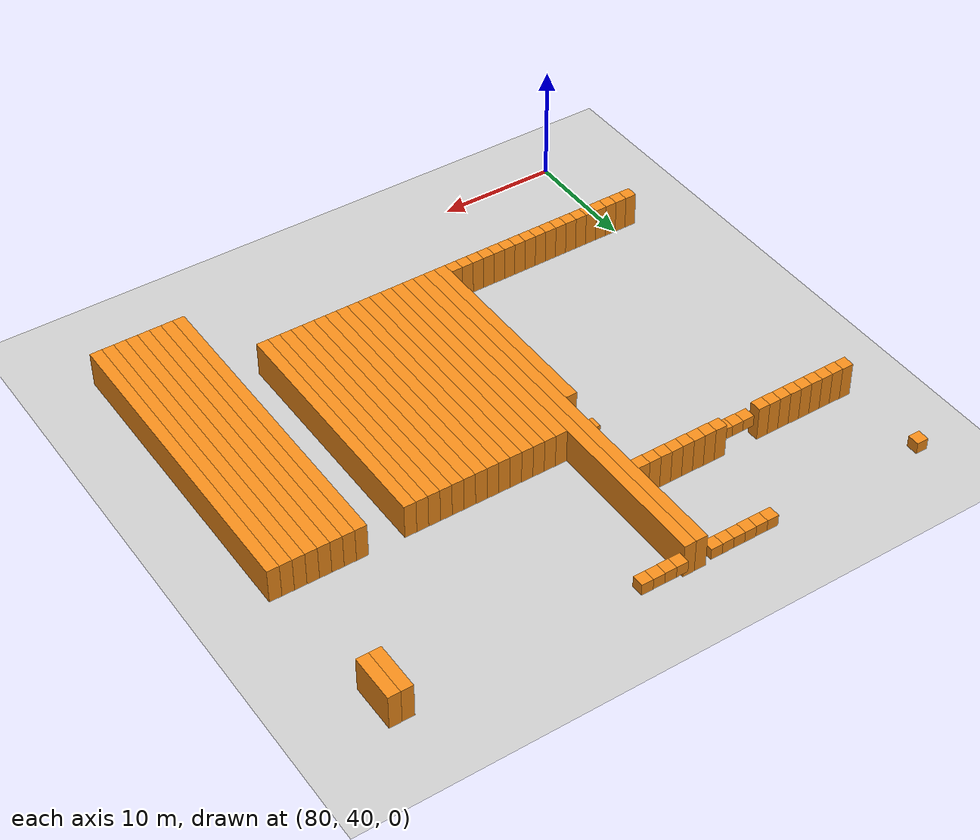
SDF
<sdf version="1.6">
 <world name="default">
  <include><uri>model://ground_plane</uri></include>
  <model name="unit_box_859">
   <pose>77.50    75.50     1.50 0 0 0</pose>
   <static>1</static>
   <link name="link">
    <inertial>
     <mass>5000</mass>
     <inertia><ixx>200</ixx><ixy>0</ixy><ixz>0</ixz><iyy>200</iyy><iyz>0</iyz><izz>200</izz></inertia>
    </inertial>
    <collision name="collision"><geometry><box><size>1 1 3</size></box></geometry></collision>
    <visual name="visual">
     <geometry><box><size>1 1 3</size></box></geometry>
     <material>
      <script><name>Gazebo/Orange</name><uri>file://media/materials/scripts/gazebo.material</uri></script>
     </material>
    </visual>
   </link>
  </model>
  <model name="unit_box_860">
   <pose>77.50    84.00     1.50 0 0 0</pose>
   <static>1</static>
   <link name="link">
    <inertial>
     <mass>5000</mass>
     <inertia><ixx>200</ixx><ixy>0</ixy><ixz>0</ixz><iyy>200</iyy><iyz>0</iyz><izz>200</izz></inertia>
    </inertial>
    <collision name="collision"><geometry><box><size>1 1 1</size></box></geometry></collision>
    <visual name="visual">
     <geometry><box><size>1 1 1</size></box></geometry>
     <material>
      <script><name>Gazebo/Orange</name><uri>file://media/materials/scripts/gazebo.material</uri></script>
     </material>
    </visual>
   </link>
  </model>
  <model name="unit_box_872">
   <pose>78.50    49.50     1.50 0 0 0</pose>
   <static>1</static>
   <link name="link">
    <inertial>
     <mass>5000</mass>
     <inertia><ixx>200</ixx><ixy>0</ixy><ixz>0</ixz><iyy>200</iyy><iyz>0</iyz><izz>200</izz></inertia>
    </inertial>
    <collision name="collision"><geometry><box><size>1 1 3</size></box></geometry></collision>
    <visual name="visual">
     <geometry><box><size>1 1 3</size></box></geometry>
     <material>
      <script><name>Gazebo/Orange</name><uri>file://media/materials/scripts/gazebo.material</uri></script>
     </material>
    </visual>
   </link>
  </model>
  <model name="unit_box_873">
   <pose>78.50    75.50     1.50 0 0 0</pose>
   <static>1</static>
   <link name="link">
    <inertial>
     <mass>5000</mass>
     <inertia><ixx>200</ixx><ixy>0</ixy><ixz>0</ixz><iyy>200</iyy><iyz>0</iyz><izz>200</izz></inertia>
    </inertial>
    <collision name="collision"><geometry><box><size>1 1 3</size></box></geometry></collision>
    <visual name="visual">
     <geometry><box><size>1 1 3</size></box></geometry>
     <material>
      <script><name>Gazebo/Orange</name><uri>file://media/materials/scripts/gazebo.material</uri></script>
     </material>
    </visual>
   </link>
  </model>
  <model name="unit_box_885">
   <pose>79.50    49.50     1.50 0 0 0</pose>
   <static>1</static>
   <link name="link">
    <inertial>
     <mass>5000</mass>
     <inertia><ixx>200</ixx><ixy>0</ixy><ixz>0</ixz><iyy>200</iyy><iyz>0</iyz><izz>200</izz></inertia>
    </inertial>
    <collision name="collision"><geometry><box><size>1 1 3</size></box></geometry></collision>
    <visual name="visual">
     <geometry><box><size>1 1 3</size></box></geometry>
     <material>
      <script><name>Gazebo/Orange</name><uri>file://media/materials/scripts/gazebo.material</uri></script>
     </material>
    </visual>
   </link>
  </model>
  <model name="unit_box_886">
   <pose>79.50    75.50     1.50 0 0 0</pose>
   <static>1</static>
   <link name="link">
    <inertial>
     <mass>5000</mass>
     <inertia><ixx>200</ixx><ixy>0</ixy><ixz>0</ixz><iyy>200</iyy><iyz>0</iyz><izz>200</izz></inertia>
    </inertial>
    <collision name="collision"><geometry><box><size>1 1 3</size></box></geometry></collision>
    <visual name="visual">
     <geometry><box><size>1 1 3</size></box></geometry>
     <material>
      <script><name>Gazebo/Orange</name><uri>file://media/materials/scripts/gazebo.material</uri></script>
     </material>
    </visual>
   </link>
  </model>
  <model name="unit_box_898">
   <pose>80.50    49.50     1.50 0 0 0</pose>
   <static>1</static>
   <link name="link">
    <inertial>
     <mass>5000</mass>
     <inertia><ixx>200</ixx><ixy>0</ixy><ixz>0</ixz><iyy>200</iyy><iyz>0</iyz><izz>200</izz></inertia>
    </inertial>
    <collision name="collision"><geometry><box><size>1 1 3</size></box></geometry></collision>
    <visual name="visual">
     <geometry><box><size>1 1 3</size></box></geometry>
     <material>
      <script><name>Gazebo/Orange</name><uri>file://media/materials/scripts/gazebo.material</uri></script>
     </material>
    </visual>
   </link>
  </model>
  <model name="unit_box_899">
   <pose>80.50    75.50     1.50 0 0 0</pose>
   <static>1</static>
   <link name="link">
    <inertial>
     <mass>5000</mass>
     <inertia><ixx>200</ixx><ixy>0</ixy><ixz>0</ixz><iyy>200</iyy><iyz>0</iyz><izz>200</izz></inertia>
    </inertial>
    <collision name="collision"><geometry><box><size>1 1 3</size></box></geometry></collision>
    <visual name="visual">
     <geometry><box><size>1 1 3</size></box></geometry>
     <material>
      <script><name>Gazebo/Orange</name><uri>file://media/materials/scripts/gazebo.material</uri></script>
     </material>
    </visual>
   </link>
  </model>
  <model name="unit_box_911">
   <pose>81.50    49.50     1.50 0 0 0</pose>
   <static>1</static>
   <link name="link">
    <inertial>
     <mass>5000</mass>
     <inertia><ixx>200</ixx><ixy>0</ixy><ixz>0</ixz><iyy>200</iyy><iyz>0</iyz><izz>200</izz></inertia>
    </inertial>
    <collision name="collision"><geometry><box><size>1 1 3</size></box></geometry></collision>
    <visual name="visual">
     <geometry><box><size>1 1 3</size></box></geometry>
     <material>
      <script><name>Gazebo/Orange</name><uri>file://media/materials/scripts/gazebo.material</uri></script>
     </material>
    </visual>
   </link>
  </model>
  <model name="unit_box_912">
   <pose>81.50    75.50     1.50 0 0 0</pose>
   <static>1</static>
   <link name="link">
    <inertial>
     <mass>5000</mass>
     <inertia><ixx>200</ixx><ixy>0</ixy><ixz>0</ixz><iyy>200</iyy><iyz>0</iyz><izz>200</izz></inertia>
    </inertial>
    <collision name="collision"><geometry><box><size>1 1 3</size></box></geometry></collision>
    <visual name="visual">
     <geometry><box><size>1 1 3</size></box></geometry>
     <material>
      <script><name>Gazebo/Orange</name><uri>file://media/materials/scripts/gazebo.material</uri></script>
     </material>
    </visual>
   </link>
  </model>
  <model name="unit_box_925">
   <pose>82.50    49.50     1.50 0 0 0</pose>
   <static>1</static>
   <link name="link">
    <inertial>
     <mass>5000</mass>
     <inertia><ixx>200</ixx><ixy>0</ixy><ixz>0</ixz><iyy>200</iyy><iyz>0</iyz><izz>200</izz></inertia>
    </inertial>
    <collision name="collision"><geometry><box><size>1 1 3</size></box></geometry></collision>
    <visual name="visual">
     <geometry><box><size>1 1 3</size></box></geometry>
     <material>
      <script><name>Gazebo/Orange</name><uri>file://media/materials/scripts/gazebo.material</uri></script>
     </material>
    </visual>
   </link>
  </model>
  <model name="unit_box_926">
   <pose>82.50    75.50     1.50 0 0 0</pose>
   <static>1</static>
   <link name="link">
    <inertial>
     <mass>5000</mass>
     <inertia><ixx>200</ixx><ixy>0</ixy><ixz>0</ixz><iyy>200</iyy><iyz>0</iyz><izz>200</izz></inertia>
    </inertial>
    <collision name="collision"><geometry><box><size>1 1 3</size></box></geometry></collision>
    <visual name="visual">
     <geometry><box><size>1 1 3</size></box></geometry>
     <material>
      <script><name>Gazebo/Orange</name><uri>file://media/materials/scripts/gazebo.material</uri></script>
     </material>
    </visual>
   </link>
  </model>
  <model name="unit_box_939">
   <pose>83.50    49.50     1.50 0 0 0</pose>
   <static>1</static>
   <link name="link">
    <inertial>
     <mass>5000</mass>
     <inertia><ixx>200</ixx><ixy>0</ixy><ixz>0</ixz><iyy>200</iyy><iyz>0</iyz><izz>200</izz></inertia>
    </inertial>
    <collision name="collision"><geometry><box><size>1 1 3</size></box></geometry></collision>
    <visual name="visual">
     <geometry><box><size>1 1 3</size></box></geometry>
     <material>
      <script><name>Gazebo/Orange</name><uri>file://media/materials/scripts/gazebo.material</uri></script>
     </material>
    </visual>
   </link>
  </model>
  <model name="unit_box_940">
   <pose>83.50    75.50     1.50 0 0 0</pose>
   <static>1</static>
   <link name="link">
    <inertial>
     <mass>5000</mass>
     <inertia><ixx>200</ixx><ixy>0</ixy><ixz>0</ixz><iyy>200</iyy><iyz>0</iyz><izz>200</izz></inertia>
    </inertial>
    <collision name="collision"><geometry><box><size>1 1 3</size></box></geometry></collision>
    <visual name="visual">
     <geometry><box><size>1 1 3</size></box></geometry>
     <material>
      <script><name>Gazebo/Orange</name><uri>file://media/materials/scripts/gazebo.material</uri></script>
     </material>
    </visual>
   </link>
  </model>
  <model name="unit_box_951">
   <pose>84.50    49.50     1.50 0 0 0</pose>
   <static>1</static>
   <link name="link">
    <inertial>
     <mass>5000</mass>
     <inertia><ixx>200</ixx><ixy>0</ixy><ixz>0</ixz><iyy>200</iyy><iyz>0</iyz><izz>200</izz></inertia>
    </inertial>
    <collision name="collision"><geometry><box><size>1 1 3</size></box></geometry></collision>
    <visual name="visual">
     <geometry><box><size>1 1 3</size></box></geometry>
     <material>
      <script><name>Gazebo/Orange</name><uri>file://media/materials/scripts/gazebo.material</uri></script>
     </material>
    </visual>
   </link>
  </model>
  <model name="unit_box_952">
   <pose>84.50    75.50     1.50 0 0 0</pose>
   <static>1</static>
   <link name="link">
    <inertial>
     <mass>5000</mass>
     <inertia><ixx>200</ixx><ixy>0</ixy><ixz>0</ixz><iyy>200</iyy><iyz>0</iyz><izz>200</izz></inertia>
    </inertial>
    <collision name="collision"><geometry><box><size>1 1 3</size></box></geometry></collision>
    <visual name="visual">
     <geometry><box><size>1 1 3</size></box></geometry>
     <material>
      <script><name>Gazebo/Orange</name><uri>file://media/materials/scripts/gazebo.material</uri></script>
     </material>
    </visual>
   </link>
  </model>
  <model name="unit_box_965">
   <pose>85.50    49.50     1.50 0 0 0</pose>
   <static>1</static>
   <link name="link">
    <inertial>
     <mass>5000</mass>
     <inertia><ixx>200</ixx><ixy>0</ixy><ixz>0</ixz><iyy>200</iyy><iyz>0</iyz><izz>200</izz></inertia>
    </inertial>
    <collision name="collision"><geometry><box><size>1 1 3</size></box></geometry></collision>
    <visual name="visual">
     <geometry><box><size>1 1 3</size></box></geometry>
     <material>
      <script><name>Gazebo/Orange</name><uri>file://media/materials/scripts/gazebo.material</uri></script>
     </material>
    </visual>
   </link>
  </model>
  <model name="unit_box_966">
   <pose>85.50    75.50     1.50 0 0 0</pose>
   <static>1</static>
   <link name="link">
    <inertial>
     <mass>5000</mass>
     <inertia><ixx>200</ixx><ixy>0</ixy><ixz>0</ixz><iyy>200</iyy><iyz>0</iyz><izz>200</izz></inertia>
    </inertial>
    <collision name="collision"><geometry><box><size>1 1 3</size></box></geometry></collision>
    <visual name="visual">
     <geometry><box><size>1 1 3</size></box></geometry>
     <material>
      <script><name>Gazebo/Orange</name><uri>file://media/materials/scripts/gazebo.material</uri></script>
     </material>
    </visual>
   </link>
  </model>
  <model name="unit_box_976">
   <pose>86.50    49.50     1.50 0 0 0</pose>
   <static>1</static>
   <link name="link">
    <inertial>
     <mass>5000</mass>
     <inertia><ixx>200</ixx><ixy>0</ixy><ixz>0</ixz><iyy>200</iyy><iyz>0</iyz><izz>200</izz></inertia>
    </inertial>
    <collision name="collision"><geometry><box><size>1 1 3</size></box></geometry></collision>
    <visual name="visual">
     <geometry><box><size>1 1 3</size></box></geometry>
     <material>
      <script><name>Gazebo/Orange</name><uri>file://media/materials/scripts/gazebo.material</uri></script>
     </material>
    </visual>
   </link>
  </model>
  <model name="unit_box_977">
   <pose>86.50    75.00     1.50 0 0 0</pose>
   <static>1</static>
   <link name="link">
    <inertial>
     <mass>5000</mass>
     <inertia><ixx>200</ixx><ixy>0</ixy><ixz>0</ixz><iyy>200</iyy><iyz>0</iyz><izz>200</izz></inertia>
    </inertial>
    <collision name="collision"><geometry><box><size>1 1 1</size></box></geometry></collision>
    <visual name="visual">
     <geometry><box><size>1 1 1</size></box></geometry>
     <material>
      <script><name>Gazebo/Orange</name><uri>file://media/materials/scripts/gazebo.material</uri></script>
     </material>
    </visual>
   </link>
  </model>
  <model name="unit_box_991">
   <pose>87.50    49.50     1.50 0 0 0</pose>
   <static>1</static>
   <link name="link">
    <inertial>
     <mass>5000</mass>
     <inertia><ixx>200</ixx><ixy>0</ixy><ixz>0</ixz><iyy>200</iyy><iyz>0</iyz><izz>200</izz></inertia>
    </inertial>
    <collision name="collision"><geometry><box><size>1 1 3</size></box></geometry></collision>
    <visual name="visual">
     <geometry><box><size>1 1 3</size></box></geometry>
     <material>
      <script><name>Gazebo/Orange</name><uri>file://media/materials/scripts/gazebo.material</uri></script>
     </material>
    </visual>
   </link>
  </model>
  <model name="unit_box_992">
   <pose>87.50    75.00     1.50 0 0 0</pose>
   <static>1</static>
   <link name="link">
    <inertial>
     <mass>5000</mass>
     <inertia><ixx>200</ixx><ixy>0</ixy><ixz>0</ixz><iyy>200</iyy><iyz>0</iyz><izz>200</izz></inertia>
    </inertial>
    <collision name="collision"><geometry><box><size>1 1 1</size></box></geometry></collision>
    <visual name="visual">
     <geometry><box><size>1 1 1</size></box></geometry>
     <material>
      <script><name>Gazebo/Orange</name><uri>file://media/materials/scripts/gazebo.material</uri></script>
     </material>
    </visual>
   </link>
  </model>
  <model name="unit_box_1001">
   <pose>88.50    49.50     1.50 0 0 0</pose>
   <static>1</static>
   <link name="link">
    <inertial>
     <mass>5000</mass>
     <inertia><ixx>200</ixx><ixy>0</ixy><ixz>0</ixz><iyy>200</iyy><iyz>0</iyz><izz>200</izz></inertia>
    </inertial>
    <collision name="collision"><geometry><box><size>1 1 3</size></box></geometry></collision>
    <visual name="visual">
     <geometry><box><size>1 1 3</size></box></geometry>
     <material>
      <script><name>Gazebo/Orange</name><uri>file://media/materials/scripts/gazebo.material</uri></script>
     </material>
    </visual>
   </link>
  </model>
  <model name="unit_box_1002">
   <pose>88.50    75.00     1.50 0 0 0</pose>
   <static>1</static>
   <link name="link">
    <inertial>
     <mass>5000</mass>
     <inertia><ixx>200</ixx><ixy>0</ixy><ixz>0</ixz><iyy>200</iyy><iyz>0</iyz><izz>200</izz></inertia>
    </inertial>
    <collision name="collision"><geometry><box><size>1 1 1</size></box></geometry></collision>
    <visual name="visual">
     <geometry><box><size>1 1 1</size></box></geometry>
     <material>
      <script><name>Gazebo/Orange</name><uri>file://media/materials/scripts/gazebo.material</uri></script>
     </material>
    </visual>
   </link>
  </model>
  <model name="unit_box_1012">
   <pose>89.50    49.50     1.50 0 0 0</pose>
   <static>1</static>
   <link name="link">
    <inertial>
     <mass>5000</mass>
     <inertia><ixx>200</ixx><ixy>0</ixy><ixz>0</ixz><iyy>200</iyy><iyz>0</iyz><izz>200</izz></inertia>
    </inertial>
    <collision name="collision"><geometry><box><size>1 1 3</size></box></geometry></collision>
    <visual name="visual">
     <geometry><box><size>1 1 3</size></box></geometry>
     <material>
      <script><name>Gazebo/Orange</name><uri>file://media/materials/scripts/gazebo.material</uri></script>
     </material>
    </visual>
   </link>
  </model>
  <model name="unit_box_1013">
   <pose>89.50    75.50     1.50 0 0 0</pose>
   <static>1</static>
   <link name="link">
    <inertial>
     <mass>5000</mass>
     <inertia><ixx>200</ixx><ixy>0</ixy><ixz>0</ixz><iyy>200</iyy><iyz>0</iyz><izz>200</izz></inertia>
    </inertial>
    <collision name="collision"><geometry><box><size>1 1 3</size></box></geometry></collision>
    <visual name="visual">
     <geometry><box><size>1 1 3</size></box></geometry>
     <material>
      <script><name>Gazebo/Orange</name><uri>file://media/materials/scripts/gazebo.material</uri></script>
     </material>
    </visual>
   </link>
  </model>
  <model name="unit_box_1021">
   <pose>90.50    49.50     1.50 0 0 0</pose>
   <static>1</static>
   <link name="link">
    <inertial>
     <mass>5000</mass>
     <inertia><ixx>200</ixx><ixy>0</ixy><ixz>0</ixz><iyy>200</iyy><iyz>0</iyz><izz>200</izz></inertia>
    </inertial>
    <collision name="collision"><geometry><box><size>1 1 3</size></box></geometry></collision>
    <visual name="visual">
     <geometry><box><size>1 1 3</size></box></geometry>
     <material>
      <script><name>Gazebo/Orange</name><uri>file://media/materials/scripts/gazebo.material</uri></script>
     </material>
    </visual>
   </link>
  </model>
  <model name="unit_box_1022">
   <pose>90.50    75.50     1.50 0 0 0</pose>
   <static>1</static>
   <link name="link">
    <inertial>
     <mass>5000</mass>
     <inertia><ixx>200</ixx><ixy>0</ixy><ixz>0</ixz><iyy>200</iyy><iyz>0</iyz><izz>200</izz></inertia>
    </inertial>
    <collision name="collision"><geometry><box><size>1 1 3</size></box></geometry></collision>
    <visual name="visual">
     <geometry><box><size>1 1 3</size></box></geometry>
     <material>
      <script><name>Gazebo/Orange</name><uri>file://media/materials/scripts/gazebo.material</uri></script>
     </material>
    </visual>
   </link>
  </model>
  <model name="unit_box_1029">
   <pose>91.50    49.50     1.50 0 0 0</pose>
   <static>1</static>
   <link name="link">
    <inertial>
     <mass>5000</mass>
     <inertia><ixx>200</ixx><ixy>0</ixy><ixz>0</ixz><iyy>200</iyy><iyz>0</iyz><izz>200</izz></inertia>
    </inertial>
    <collision name="collision"><geometry><box><size>1 1 3</size></box></geometry></collision>
    <visual name="visual">
     <geometry><box><size>1 1 3</size></box></geometry>
     <material>
      <script><name>Gazebo/Orange</name><uri>file://media/materials/scripts/gazebo.material</uri></script>
     </material>
    </visual>
   </link>
  </model>
  <model name="unit_box_1030">
   <pose>91.50    75.50     1.50 0 0 0</pose>
   <static>1</static>
   <link name="link">
    <inertial>
     <mass>5000</mass>
     <inertia><ixx>200</ixx><ixy>0</ixy><ixz>0</ixz><iyy>200</iyy><iyz>0</iyz><izz>200</izz></inertia>
    </inertial>
    <collision name="collision"><geometry><box><size>1 1 3</size></box></geometry></collision>
    <visual name="visual">
     <geometry><box><size>1 1 3</size></box></geometry>
     <material>
      <script><name>Gazebo/Orange</name><uri>file://media/materials/scripts/gazebo.material</uri></script>
     </material>
    </visual>
   </link>
  </model>
  <model name="unit_box_1031">
   <pose>91.50    84.00     1.50 0 0 0</pose>
   <static>1</static>
   <link name="link">
    <inertial>
     <mass>5000</mass>
     <inertia><ixx>200</ixx><ixy>0</ixy><ixz>0</ixz><iyy>200</iyy><iyz>0</iyz><izz>200</izz></inertia>
    </inertial>
    <collision name="collision"><geometry><box><size>1 1 1</size></box></geometry></collision>
    <visual name="visual">
     <geometry><box><size>1 1 1</size></box></geometry>
     <material>
      <script><name>Gazebo/Orange</name><uri>file://media/materials/scripts/gazebo.material</uri></script>
     </material>
    </visual>
   </link>
  </model>
  <model name="unit_box_1038">
   <pose>92.50    49.50     1.50 0 0 0</pose>
   <static>1</static>
   <link name="link">
    <inertial>
     <mass>5000</mass>
     <inertia><ixx>200</ixx><ixy>0</ixy><ixz>0</ixz><iyy>200</iyy><iyz>0</iyz><izz>200</izz></inertia>
    </inertial>
    <collision name="collision"><geometry><box><size>1 1 3</size></box></geometry></collision>
    <visual name="visual">
     <geometry><box><size>1 1 3</size></box></geometry>
     <material>
      <script><name>Gazebo/Orange</name><uri>file://media/materials/scripts/gazebo.material</uri></script>
     </material>
    </visual>
   </link>
  </model>
  <model name="unit_box_1039">
   <pose>92.50    75.50     1.50 0 0 0</pose>
   <static>1</static>
   <link name="link">
    <inertial>
     <mass>5000</mass>
     <inertia><ixx>200</ixx><ixy>0</ixy><ixz>0</ixz><iyy>200</iyy><iyz>0</iyz><izz>200</izz></inertia>
    </inertial>
    <collision name="collision"><geometry><box><size>1 1 3</size></box></geometry></collision>
    <visual name="visual">
     <geometry><box><size>1 1 3</size></box></geometry>
     <material>
      <script><name>Gazebo/Orange</name><uri>file://media/materials/scripts/gazebo.material</uri></script>
     </material>
    </visual>
   </link>
  </model>
  <model name="unit_box_1040">
   <pose>92.50    84.00     1.50 0 0 0</pose>
   <static>1</static>
   <link name="link">
    <inertial>
     <mass>5000</mass>
     <inertia><ixx>200</ixx><ixy>0</ixy><ixz>0</ixz><iyy>200</iyy><iyz>0</iyz><izz>200</izz></inertia>
    </inertial>
    <collision name="collision"><geometry><box><size>1 1 1</size></box></geometry></collision>
    <visual name="visual">
     <geometry><box><size>1 1 1</size></box></geometry>
     <material>
      <script><name>Gazebo/Orange</name><uri>file://media/materials/scripts/gazebo.material</uri></script>
     </material>
    </visual>
   </link>
  </model>
  <model name="unit_box_1047">
   <pose>93.50    49.50     1.50 0 0 0</pose>
   <static>1</static>
   <link name="link">
    <inertial>
     <mass>5000</mass>
     <inertia><ixx>200</ixx><ixy>0</ixy><ixz>0</ixz><iyy>200</iyy><iyz>0</iyz><izz>200</izz></inertia>
    </inertial>
    <collision name="collision"><geometry><box><size>1 1 3</size></box></geometry></collision>
    <visual name="visual">
     <geometry><box><size>1 1 3</size></box></geometry>
     <material>
      <script><name>Gazebo/Orange</name><uri>file://media/materials/scripts/gazebo.material</uri></script>
     </material>
    </visual>
   </link>
  </model>
  <model name="unit_box_1048">
   <pose>93.50    75.50     1.50 0 0 0</pose>
   <static>1</static>
   <link name="link">
    <inertial>
     <mass>5000</mass>
     <inertia><ixx>200</ixx><ixy>0</ixy><ixz>0</ixz><iyy>200</iyy><iyz>0</iyz><izz>200</izz></inertia>
    </inertial>
    <collision name="collision"><geometry><box><size>1 1 3</size></box></geometry></collision>
    <visual name="visual">
     <geometry><box><size>1 1 3</size></box></geometry>
     <material>
      <script><name>Gazebo/Orange</name><uri>file://media/materials/scripts/gazebo.material</uri></script>
     </material>
    </visual>
   </link>
  </model>
  <model name="unit_box_1049">
   <pose>93.50    84.00     1.50 0 0 0</pose>
   <static>1</static>
   <link name="link">
    <inertial>
     <mass>5000</mass>
     <inertia><ixx>200</ixx><ixy>0</ixy><ixz>0</ixz><iyy>200</iyy><iyz>0</iyz><izz>200</izz></inertia>
    </inertial>
    <collision name="collision"><geometry><box><size>1 1 1</size></box></geometry></collision>
    <visual name="visual">
     <geometry><box><size>1 1 1</size></box></geometry>
     <material>
      <script><name>Gazebo/Orange</name><uri>file://media/materials/scripts/gazebo.material</uri></script>
     </material>
    </visual>
   </link>
  </model>
  <model name="unit_box_1055">
   <pose>94.50    49.50     1.50 0 0 0</pose>
   <static>1</static>
   <link name="link">
    <inertial>
     <mass>5000</mass>
     <inertia><ixx>200</ixx><ixy>0</ixy><ixz>0</ixz><iyy>200</iyy><iyz>0</iyz><izz>200</izz></inertia>
    </inertial>
    <collision name="collision"><geometry><box><size>1 1 3</size></box></geometry></collision>
    <visual name="visual">
     <geometry><box><size>1 1 3</size></box></geometry>
     <material>
      <script><name>Gazebo/Orange</name><uri>file://media/materials/scripts/gazebo.material</uri></script>
     </material>
    </visual>
   </link>
  </model>
  <model name="unit_box_1056">
   <pose>94.50    75.50     1.50 0 0 0</pose>
   <static>1</static>
   <link name="link">
    <inertial>
     <mass>5000</mass>
     <inertia><ixx>200</ixx><ixy>0</ixy><ixz>0</ixz><iyy>200</iyy><iyz>0</iyz><izz>200</izz></inertia>
    </inertial>
    <collision name="collision"><geometry><box><size>1 1 3</size></box></geometry></collision>
    <visual name="visual">
     <geometry><box><size>1 1 3</size></box></geometry>
     <material>
      <script><name>Gazebo/Orange</name><uri>file://media/materials/scripts/gazebo.material</uri></script>
     </material>
    </visual>
   </link>
  </model>
  <model name="unit_box_1057">
   <pose>94.50    84.00     1.50 0 0 0</pose>
   <static>1</static>
   <link name="link">
    <inertial>
     <mass>5000</mass>
     <inertia><ixx>200</ixx><ixy>0</ixy><ixz>0</ixz><iyy>200</iyy><iyz>0</iyz><izz>200</izz></inertia>
    </inertial>
    <collision name="collision"><geometry><box><size>1 1 1</size></box></geometry></collision>
    <visual name="visual">
     <geometry><box><size>1 1 1</size></box></geometry>
     <material>
      <script><name>Gazebo/Orange</name><uri>file://media/materials/scripts/gazebo.material</uri></script>
     </material>
    </visual>
   </link>
  </model>
  <model name="unit_box_1066">
   <pose>95.50    49.50     1.50 0 0 0</pose>
   <static>1</static>
   <link name="link">
    <inertial>
     <mass>5000</mass>
     <inertia><ixx>200</ixx><ixy>0</ixy><ixz>0</ixz><iyy>200</iyy><iyz>0</iyz><izz>200</izz></inertia>
    </inertial>
    <collision name="collision"><geometry><box><size>1 1 3</size></box></geometry></collision>
    <visual name="visual">
     <geometry><box><size>1 1 3</size></box></geometry>
     <material>
      <script><name>Gazebo/Orange</name><uri>file://media/materials/scripts/gazebo.material</uri></script>
     </material>
    </visual>
   </link>
  </model>
  <model name="unit_box_1067">
   <pose>95.50    75.50     1.50 0 0 0</pose>
   <static>1</static>
   <link name="link">
    <inertial>
     <mass>5000</mass>
     <inertia><ixx>200</ixx><ixy>0</ixy><ixz>0</ixz><iyy>200</iyy><iyz>0</iyz><izz>200</izz></inertia>
    </inertial>
    <collision name="collision"><geometry><box><size>1 1 3</size></box></geometry></collision>
    <visual name="visual">
     <geometry><box><size>1 1 3</size></box></geometry>
     <material>
      <script><name>Gazebo/Orange</name><uri>file://media/materials/scripts/gazebo.material</uri></script>
     </material>
    </visual>
   </link>
  </model>
  <model name="unit_box_1068">
   <pose>95.50    84.00     1.50 0 0 0</pose>
   <static>1</static>
   <link name="link">
    <inertial>
     <mass>5000</mass>
     <inertia><ixx>200</ixx><ixy>0</ixy><ixz>0</ixz><iyy>200</iyy><iyz>0</iyz><izz>200</izz></inertia>
    </inertial>
    <collision name="collision"><geometry><box><size>1 1 1</size></box></geometry></collision>
    <visual name="visual">
     <geometry><box><size>1 1 1</size></box></geometry>
     <material>
      <script><name>Gazebo/Orange</name><uri>file://media/materials/scripts/gazebo.material</uri></script>
     </material>
    </visual>
   </link>
  </model>
  <model name="unit_box_1077">
   <pose>96.50    58.00     1.50 0 0 0</pose>
   <static>1</static>
   <link name="link">
    <inertial>
     <mass>5000</mass>
     <inertia><ixx>200</ixx><ixy>0</ixy><ixz>0</ixz><iyy>200</iyy><iyz>0</iyz><izz>200</izz></inertia>
    </inertial>
    <collision name="collision"><geometry><box><size>1 18 3</size></box></geometry></collision>
    <visual name="visual">
     <geometry><box><size>1 18 3</size></box></geometry>
     <material>
      <script><name>Gazebo/Orange</name><uri>file://media/materials/scripts/gazebo.material</uri></script>
     </material>
    </visual>
   </link>
  </model>
  <model name="unit_box_1078">
   <pose>96.50    69.50     1.50 0 0 0</pose>
   <static>1</static>
   <link name="link">
    <inertial>
     <mass>5000</mass>
     <inertia><ixx>200</ixx><ixy>0</ixy><ixz>0</ixz><iyy>200</iyy><iyz>0</iyz><izz>200</izz></inertia>
    </inertial>
    <collision name="collision"><geometry><box><size>1 1 1</size></box></geometry></collision>
    <visual name="visual">
     <geometry><box><size>1 1 1</size></box></geometry>
     <material>
      <script><name>Gazebo/Orange</name><uri>file://media/materials/scripts/gazebo.material</uri></script>
     </material>
    </visual>
   </link>
  </model>
  <model name="unit_box_1079">
   <pose>96.50    75.50     1.50 0 0 0</pose>
   <static>1</static>
   <link name="link">
    <inertial>
     <mass>5000</mass>
     <inertia><ixx>200</ixx><ixy>0</ixy><ixz>0</ixz><iyy>200</iyy><iyz>0</iyz><izz>200</izz></inertia>
    </inertial>
    <collision name="collision"><geometry><box><size>1 1 3</size></box></geometry></collision>
    <visual name="visual">
     <geometry><box><size>1 1 3</size></box></geometry>
     <material>
      <script><name>Gazebo/Orange</name><uri>file://media/materials/scripts/gazebo.material</uri></script>
     </material>
    </visual>
   </link>
  </model>
  <model name="unit_box_1080">
   <pose>96.50    84.00     1.50 0 0 0</pose>
   <static>1</static>
   <link name="link">
    <inertial>
     <mass>5000</mass>
     <inertia><ixx>200</ixx><ixy>0</ixy><ixz>0</ixz><iyy>200</iyy><iyz>0</iyz><izz>200</izz></inertia>
    </inertial>
    <collision name="collision"><geometry><box><size>1 1 1</size></box></geometry></collision>
    <visual name="visual">
     <geometry><box><size>1 1 1</size></box></geometry>
     <material>
      <script><name>Gazebo/Orange</name><uri>file://media/materials/scripts/gazebo.material</uri></script>
     </material>
    </visual>
   </link>
  </model>
  <model name="unit_box_1089">
   <pose>97.50    66.50     1.50 0 0 0</pose>
   <static>1</static>
   <link name="link">
    <inertial>
     <mass>5000</mass>
     <inertia><ixx>200</ixx><ixy>0</ixy><ixz>0</ixz><iyy>200</iyy><iyz>0</iyz><izz>200</izz></inertia>
    </inertial>
    <collision name="collision"><geometry><box><size>1 35 3</size></box></geometry></collision>
    <visual name="visual">
     <geometry><box><size>1 35 3</size></box></geometry>
     <material>
      <script><name>Gazebo/Orange</name><uri>file://media/materials/scripts/gazebo.material</uri></script>
     </material>
    </visual>
   </link>
  </model>
  <model name="unit_box_1099">
   <pose>98.50    66.50     1.50 0 0 0</pose>
   <static>1</static>
   <link name="link">
    <inertial>
     <mass>5000</mass>
     <inertia><ixx>200</ixx><ixy>0</ixy><ixz>0</ixz><iyy>200</iyy><iyz>0</iyz><izz>200</izz></inertia>
    </inertial>
    <collision name="collision"><geometry><box><size>1 35 3</size></box></geometry></collision>
    <visual name="visual">
     <geometry><box><size>1 35 3</size></box></geometry>
     <material>
      <script><name>Gazebo/Orange</name><uri>file://media/materials/scripts/gazebo.material</uri></script>
     </material>
    </visual>
   </link>
  </model>
  <model name="unit_box_1110">
   <pose>99.50    59.50     1.50 0 0 0</pose>
   <static>1</static>
   <link name="link">
    <inertial>
     <mass>5000</mass>
     <inertia><ixx>200</ixx><ixy>0</ixy><ixz>0</ixz><iyy>200</iyy><iyz>0</iyz><izz>200</izz></inertia>
    </inertial>
    <collision name="collision"><geometry><box><size>1 21 3</size></box></geometry></collision>
    <visual name="visual">
     <geometry><box><size>1 21 3</size></box></geometry>
     <material>
      <script><name>Gazebo/Orange</name><uri>file://media/materials/scripts/gazebo.material</uri></script>
     </material>
    </visual>
   </link>
  </model>
  <model name="unit_box_1111">
   <pose>99.50    84.00     1.50 0 0 0</pose>
   <static>1</static>
   <link name="link">
    <inertial>
     <mass>5000</mass>
     <inertia><ixx>200</ixx><ixy>0</ixy><ixz>0</ixz><iyy>200</iyy><iyz>0</iyz><izz>200</izz></inertia>
    </inertial>
    <collision name="collision"><geometry><box><size>1 1 1</size></box></geometry></collision>
    <visual name="visual">
     <geometry><box><size>1 1 1</size></box></geometry>
     <material>
      <script><name>Gazebo/Orange</name><uri>file://media/materials/scripts/gazebo.material</uri></script>
     </material>
    </visual>
   </link>
  </model>
  <model name="unit_box_1122">
   <pose>100.50    59.50     1.50 0 0 0</pose>
   <static>1</static>
   <link name="link">
    <inertial>
     <mass>5000</mass>
     <inertia><ixx>200</ixx><ixy>0</ixy><ixz>0</ixz><iyy>200</iyy><iyz>0</iyz><izz>200</izz></inertia>
    </inertial>
    <collision name="collision"><geometry><box><size>1 21 3</size></box></geometry></collision>
    <visual name="visual">
     <geometry><box><size>1 21 3</size></box></geometry>
     <material>
      <script><name>Gazebo/Orange</name><uri>file://media/materials/scripts/gazebo.material</uri></script>
     </material>
    </visual>
   </link>
  </model>
  <model name="unit_box_1123">
   <pose>100.50    84.00     1.50 0 0 0</pose>
   <static>1</static>
   <link name="link">
    <inertial>
     <mass>5000</mass>
     <inertia><ixx>200</ixx><ixy>0</ixy><ixz>0</ixz><iyy>200</iyy><iyz>0</iyz><izz>200</izz></inertia>
    </inertial>
    <collision name="collision"><geometry><box><size>1 1 1</size></box></geometry></collision>
    <visual name="visual">
     <geometry><box><size>1 1 1</size></box></geometry>
     <material>
      <script><name>Gazebo/Orange</name><uri>file://media/materials/scripts/gazebo.material</uri></script>
     </material>
    </visual>
   </link>
  </model>
  <model name="unit_box_1134">
   <pose>101.50    59.50     1.50 0 0 0</pose>
   <static>1</static>
   <link name="link">
    <inertial>
     <mass>5000</mass>
     <inertia><ixx>200</ixx><ixy>0</ixy><ixz>0</ixz><iyy>200</iyy><iyz>0</iyz><izz>200</izz></inertia>
    </inertial>
    <collision name="collision"><geometry><box><size>1 21 3</size></box></geometry></collision>
    <visual name="visual">
     <geometry><box><size>1 21 3</size></box></geometry>
     <material>
      <script><name>Gazebo/Orange</name><uri>file://media/materials/scripts/gazebo.material</uri></script>
     </material>
    </visual>
   </link>
  </model>
  <model name="unit_box_1135">
   <pose>101.50    84.00     1.50 0 0 0</pose>
   <static>1</static>
   <link name="link">
    <inertial>
     <mass>5000</mass>
     <inertia><ixx>200</ixx><ixy>0</ixy><ixz>0</ixz><iyy>200</iyy><iyz>0</iyz><izz>200</izz></inertia>
    </inertial>
    <collision name="collision"><geometry><box><size>1 1 1</size></box></geometry></collision>
    <visual name="visual">
     <geometry><box><size>1 1 1</size></box></geometry>
     <material>
      <script><name>Gazebo/Orange</name><uri>file://media/materials/scripts/gazebo.material</uri></script>
     </material>
    </visual>
   </link>
  </model>
  <model name="unit_box_1145">
   <pose>102.50    59.50     1.50 0 0 0</pose>
   <static>1</static>
   <link name="link">
    <inertial>
     <mass>5000</mass>
     <inertia><ixx>200</ixx><ixy>0</ixy><ixz>0</ixz><iyy>200</iyy><iyz>0</iyz><izz>200</izz></inertia>
    </inertial>
    <collision name="collision"><geometry><box><size>1 21 3</size></box></geometry></collision>
    <visual name="visual">
     <geometry><box><size>1 21 3</size></box></geometry>
     <material>
      <script><name>Gazebo/Orange</name><uri>file://media/materials/scripts/gazebo.material</uri></script>
     </material>
    </visual>
   </link>
  </model>
  <model name="unit_box_1146">
   <pose>102.50    84.00     1.50 0 0 0</pose>
   <static>1</static>
   <link name="link">
    <inertial>
     <mass>5000</mass>
     <inertia><ixx>200</ixx><ixy>0</ixy><ixz>0</ixz><iyy>200</iyy><iyz>0</iyz><izz>200</izz></inertia>
    </inertial>
    <collision name="collision"><geometry><box><size>1 1 1</size></box></geometry></collision>
    <visual name="visual">
     <geometry><box><size>1 1 1</size></box></geometry>
     <material>
      <script><name>Gazebo/Orange</name><uri>file://media/materials/scripts/gazebo.material</uri></script>
     </material>
    </visual>
   </link>
  </model>
  <model name="unit_box_1155">
   <pose>103.50    59.50     1.50 0 0 0</pose>
   <static>1</static>
   <link name="link">
    <inertial>
     <mass>5000</mass>
     <inertia><ixx>200</ixx><ixy>0</ixy><ixz>0</ixz><iyy>200</iyy><iyz>0</iyz><izz>200</izz></inertia>
    </inertial>
    <collision name="collision"><geometry><box><size>1 21 3</size></box></geometry></collision>
    <visual name="visual">
     <geometry><box><size>1 21 3</size></box></geometry>
     <material>
      <script><name>Gazebo/Orange</name><uri>file://media/materials/scripts/gazebo.material</uri></script>
     </material>
    </visual>
   </link>
  </model>
  <model name="unit_box_1165">
   <pose>104.50    59.50     1.50 0 0 0</pose>
   <static>1</static>
   <link name="link">
    <inertial>
     <mass>5000</mass>
     <inertia><ixx>200</ixx><ixy>0</ixy><ixz>0</ixz><iyy>200</iyy><iyz>0</iyz><izz>200</izz></inertia>
    </inertial>
    <collision name="collision"><geometry><box><size>1 21 3</size></box></geometry></collision>
    <visual name="visual">
     <geometry><box><size>1 21 3</size></box></geometry>
     <material>
      <script><name>Gazebo/Orange</name><uri>file://media/materials/scripts/gazebo.material</uri></script>
     </material>
    </visual>
   </link>
  </model>
  <model name="unit_box_1175">
   <pose>105.50    59.50     1.50 0 0 0</pose>
   <static>1</static>
   <link name="link">
    <inertial>
     <mass>5000</mass>
     <inertia><ixx>200</ixx><ixy>0</ixy><ixz>0</ixz><iyy>200</iyy><iyz>0</iyz><izz>200</izz></inertia>
    </inertial>
    <collision name="collision"><geometry><box><size>1 21 3</size></box></geometry></collision>
    <visual name="visual">
     <geometry><box><size>1 21 3</size></box></geometry>
     <material>
      <script><name>Gazebo/Orange</name><uri>file://media/materials/scripts/gazebo.material</uri></script>
     </material>
    </visual>
   </link>
  </model>
  <model name="unit_box_1185">
   <pose>106.50    59.50     1.50 0 0 0</pose>
   <static>1</static>
   <link name="link">
    <inertial>
     <mass>5000</mass>
     <inertia><ixx>200</ixx><ixy>0</ixy><ixz>0</ixz><iyy>200</iyy><iyz>0</iyz><izz>200</izz></inertia>
    </inertial>
    <collision name="collision"><geometry><box><size>1 21 3</size></box></geometry></collision>
    <visual name="visual">
     <geometry><box><size>1 21 3</size></box></geometry>
     <material>
      <script><name>Gazebo/Orange</name><uri>file://media/materials/scripts/gazebo.material</uri></script>
     </material>
    </visual>
   </link>
  </model>
  <model name="unit_box_1194">
   <pose>107.50    59.50     1.50 0 0 0</pose>
   <static>1</static>
   <link name="link">
    <inertial>
     <mass>5000</mass>
     <inertia><ixx>200</ixx><ixy>0</ixy><ixz>0</ixz><iyy>200</iyy><iyz>0</iyz><izz>200</izz></inertia>
    </inertial>
    <collision name="collision"><geometry><box><size>1 21 3</size></box></geometry></collision>
    <visual name="visual">
     <geometry><box><size>1 21 3</size></box></geometry>
     <material>
      <script><name>Gazebo/Orange</name><uri>file://media/materials/scripts/gazebo.material</uri></script>
     </material>
    </visual>
   </link>
  </model>
  <model name="unit_box_1203">
   <pose>108.50    59.50     1.50 0 0 0</pose>
   <static>1</static>
   <link name="link">
    <inertial>
     <mass>5000</mass>
     <inertia><ixx>200</ixx><ixy>0</ixy><ixz>0</ixz><iyy>200</iyy><iyz>0</iyz><izz>200</izz></inertia>
    </inertial>
    <collision name="collision"><geometry><box><size>1 21 3</size></box></geometry></collision>
    <visual name="visual">
     <geometry><box><size>1 21 3</size></box></geometry>
     <material>
      <script><name>Gazebo/Orange</name><uri>file://media/materials/scripts/gazebo.material</uri></script>
     </material>
    </visual>
   </link>
  </model>
  <model name="unit_box_1212">
   <pose>109.50    59.50     1.50 0 0 0</pose>
   <static>1</static>
   <link name="link">
    <inertial>
     <mass>5000</mass>
     <inertia><ixx>200</ixx><ixy>0</ixy><ixz>0</ixz><iyy>200</iyy><iyz>0</iyz><izz>200</izz></inertia>
    </inertial>
    <collision name="collision"><geometry><box><size>1 21 3</size></box></geometry></collision>
    <visual name="visual">
     <geometry><box><size>1 21 3</size></box></geometry>
     <material>
      <script><name>Gazebo/Orange</name><uri>file://media/materials/scripts/gazebo.material</uri></script>
     </material>
    </visual>
   </link>
  </model>
  <model name="unit_box_1221">
   <pose>110.50    59.50     1.50 0 0 0</pose>
   <static>1</static>
   <link name="link">
    <inertial>
     <mass>5000</mass>
     <inertia><ixx>200</ixx><ixy>0</ixy><ixz>0</ixz><iyy>200</iyy><iyz>0</iyz><izz>200</izz></inertia>
    </inertial>
    <collision name="collision"><geometry><box><size>1 21 3</size></box></geometry></collision>
    <visual name="visual">
     <geometry><box><size>1 21 3</size></box></geometry>
     <material>
      <script><name>Gazebo/Orange</name><uri>file://media/materials/scripts/gazebo.material</uri></script>
     </material>
    </visual>
   </link>
  </model>
  <model name="unit_box_1230">
   <pose>111.50    59.50     1.50 0 0 0</pose>
   <static>1</static>
   <link name="link">
    <inertial>
     <mass>5000</mass>
     <inertia><ixx>200</ixx><ixy>0</ixy><ixz>0</ixz><iyy>200</iyy><iyz>0</iyz><izz>200</izz></inertia>
    </inertial>
    <collision name="collision"><geometry><box><size>1 21 3</size></box></geometry></collision>
    <visual name="visual">
     <geometry><box><size>1 21 3</size></box></geometry>
     <material>
      <script><name>Gazebo/Orange</name><uri>file://media/materials/scripts/gazebo.material</uri></script>
     </material>
    </visual>
   </link>
  </model>
  <model name="unit_box_1240">
   <pose>112.50    59.50     1.50 0 0 0</pose>
   <static>1</static>
   <link name="link">
    <inertial>
     <mass>5000</mass>
     <inertia><ixx>200</ixx><ixy>0</ixy><ixz>0</ixz><iyy>200</iyy><iyz>0</iyz><izz>200</izz></inertia>
    </inertial>
    <collision name="collision"><geometry><box><size>1 21 3</size></box></geometry></collision>
    <visual name="visual">
     <geometry><box><size>1 21 3</size></box></geometry>
     <material>
      <script><name>Gazebo/Orange</name><uri>file://media/materials/scripts/gazebo.material</uri></script>
     </material>
    </visual>
   </link>
  </model>
  <model name="unit_box_1283">
   <pose>116.50    56.50     1.50 0 0 0</pose>
   <static>1</static>
   <link name="link">
    <inertial>
     <mass>5000</mass>
     <inertia><ixx>200</ixx><ixy>0</ixy><ixz>0</ixz><iyy>200</iyy><iyz>0</iyz><izz>200</izz></inertia>
    </inertial>
    <collision name="collision"><geometry><box><size>1 27 3</size></box></geometry></collision>
    <visual name="visual">
     <geometry><box><size>1 27 3</size></box></geometry>
     <material>
      <script><name>Gazebo/Orange</name><uri>file://media/materials/scripts/gazebo.material</uri></script>
     </material>
    </visual>
   </link>
  </model>
  <model name="unit_box_1295">
   <pose>117.50    56.50     1.50 0 0 0</pose>
   <static>1</static>
   <link name="link">
    <inertial>
     <mass>5000</mass>
     <inertia><ixx>200</ixx><ixy>0</ixy><ixz>0</ixz><iyy>200</iyy><iyz>0</iyz><izz>200</izz></inertia>
    </inertial>
    <collision name="collision"><geometry><box><size>1 27 3</size></box></geometry></collision>
    <visual name="visual">
     <geometry><box><size>1 27 3</size></box></geometry>
     <material>
      <script><name>Gazebo/Orange</name><uri>file://media/materials/scripts/gazebo.material</uri></script>
     </material>
    </visual>
   </link>
  </model>
  <model name="unit_box_1307">
   <pose>118.50    56.50     1.50 0 0 0</pose>
   <static>1</static>
   <link name="link">
    <inertial>
     <mass>5000</mass>
     <inertia><ixx>200</ixx><ixy>0</ixy><ixz>0</ixz><iyy>200</iyy><iyz>0</iyz><izz>200</izz></inertia>
    </inertial>
    <collision name="collision"><geometry><box><size>1 27 3</size></box></geometry></collision>
    <visual name="visual">
     <geometry><box><size>1 27 3</size></box></geometry>
     <material>
      <script><name>Gazebo/Orange</name><uri>file://media/materials/scripts/gazebo.material</uri></script>
     </material>
    </visual>
   </link>
  </model>
  <model name="unit_box_1318">
   <pose>119.50    56.50     1.50 0 0 0</pose>
   <static>1</static>
   <link name="link">
    <inertial>
     <mass>5000</mass>
     <inertia><ixx>200</ixx><ixy>0</ixy><ixz>0</ixz><iyy>200</iyy><iyz>0</iyz><izz>200</izz></inertia>
    </inertial>
    <collision name="collision"><geometry><box><size>1 27 3</size></box></geometry></collision>
    <visual name="visual">
     <geometry><box><size>1 27 3</size></box></geometry>
     <material>
      <script><name>Gazebo/Orange</name><uri>file://media/materials/scripts/gazebo.material</uri></script>
     </material>
    </visual>
   </link>
  </model>
  <model name="unit_box_1332">
   <pose>120.50    56.50     1.50 0 0 0</pose>
   <static>1</static>
   <link name="link">
    <inertial>
     <mass>5000</mass>
     <inertia><ixx>200</ixx><ixy>0</ixy><ixz>0</ixz><iyy>200</iyy><iyz>0</iyz><izz>200</izz></inertia>
    </inertial>
    <collision name="collision"><geometry><box><size>1 27 3</size></box></geometry></collision>
    <visual name="visual">
     <geometry><box><size>1 27 3</size></box></geometry>
     <material>
      <script><name>Gazebo/Orange</name><uri>file://media/materials/scripts/gazebo.material</uri></script>
     </material>
    </visual>
   </link>
  </model>
  <model name="unit_box_1344">
   <pose>121.50    56.50     1.50 0 0 0</pose>
   <static>1</static>
   <link name="link">
    <inertial>
     <mass>5000</mass>
     <inertia><ixx>200</ixx><ixy>0</ixy><ixz>0</ixz><iyy>200</iyy><iyz>0</iyz><izz>200</izz></inertia>
    </inertial>
    <collision name="collision"><geometry><box><size>1 27 3</size></box></geometry></collision>
    <visual name="visual">
     <geometry><box><size>1 27 3</size></box></geometry>
     <material>
      <script><name>Gazebo/Orange</name><uri>file://media/materials/scripts/gazebo.material</uri></script>
     </material>
    </visual>
   </link>
  </model>
  <model name="unit_box_1345">
   <pose>121.50    82.00     1.50 0 0 0</pose>
   <static>1</static>
   <link name="link">
    <inertial>
     <mass>5000</mass>
     <inertia><ixx>200</ixx><ixy>0</ixy><ixz>0</ixz><iyy>200</iyy><iyz>0</iyz><izz>200</izz></inertia>
    </inertial>
    <collision name="collision"><geometry><box><size>1 4 3</size></box></geometry></collision>
    <visual name="visual">
     <geometry><box><size>1 4 3</size></box></geometry>
     <material>
      <script><name>Gazebo/Orange</name><uri>file://media/materials/scripts/gazebo.material</uri></script>
     </material>
    </visual>
   </link>
  </model>
  <model name="unit_box_1353">
   <pose>122.50    56.50     1.50 0 0 0</pose>
   <static>1</static>
   <link name="link">
    <inertial>
     <mass>5000</mass>
     <inertia><ixx>200</ixx><ixy>0</ixy><ixz>0</ixz><iyy>200</iyy><iyz>0</iyz><izz>200</izz></inertia>
    </inertial>
    <collision name="collision"><geometry><box><size>1 27 3</size></box></geometry></collision>
    <visual name="visual">
     <geometry><box><size>1 27 3</size></box></geometry>
     <material>
      <script><name>Gazebo/Orange</name><uri>file://media/materials/scripts/gazebo.material</uri></script>
     </material>
    </visual>
   </link>
  </model>
  <model name="unit_box_1354">
   <pose>122.50    82.00     1.50 0 0 0</pose>
   <static>1</static>
   <link name="link">
    <inertial>
     <mass>5000</mass>
     <inertia><ixx>200</ixx><ixy>0</ixy><ixz>0</ixz><iyy>200</iyy><iyz>0</iyz><izz>200</izz></inertia>
    </inertial>
    <collision name="collision"><geometry><box><size>1 4 3</size></box></geometry></collision>
    <visual name="visual">
     <geometry><box><size>1 4 3</size></box></geometry>
     <material>
      <script><name>Gazebo/Orange</name><uri>file://media/materials/scripts/gazebo.material</uri></script>
     </material>
    </visual>
   </link>
  </model>
  <model name="unit_box_1360">
   <pose>123.50    56.50     1.50 0 0 0</pose>
   <static>1</static>
   <link name="link">
    <inertial>
     <mass>5000</mass>
     <inertia><ixx>200</ixx><ixy>0</ixy><ixz>0</ixz><iyy>200</iyy><iyz>0</iyz><izz>200</izz></inertia>
    </inertial>
    <collision name="collision"><geometry><box><size>1 27 3</size></box></geometry></collision>
    <visual name="visual">
     <geometry><box><size>1 27 3</size></box></geometry>
     <material>
      <script><name>Gazebo/Orange</name><uri>file://media/materials/scripts/gazebo.material</uri></script>
     </material>
    </visual>
   </link>
  </model>
 </world>
</sdf>
